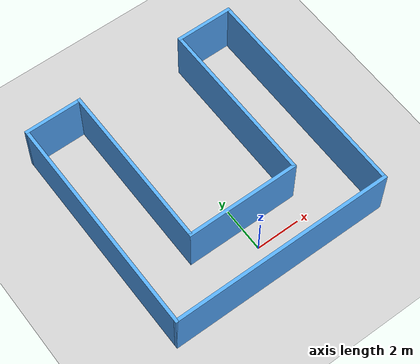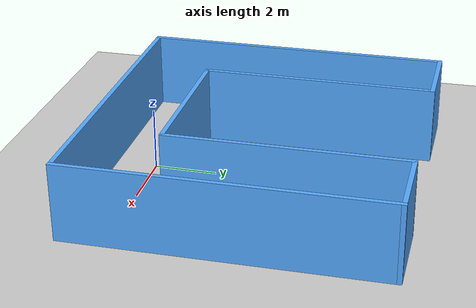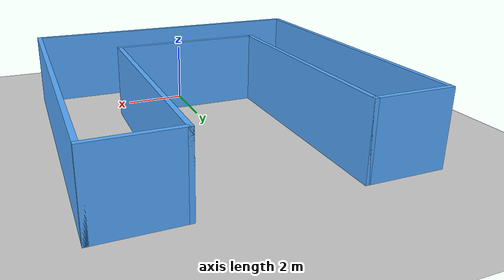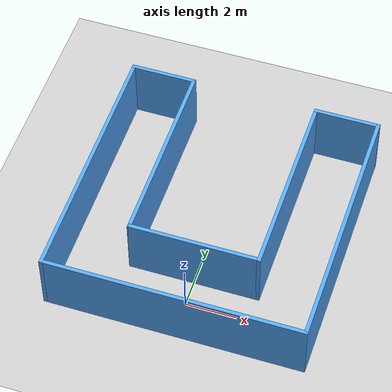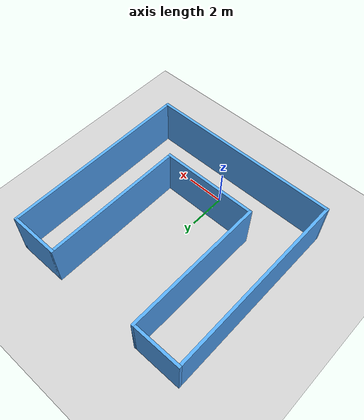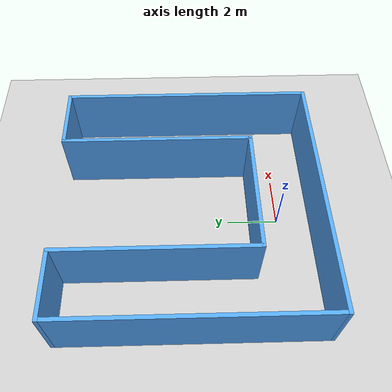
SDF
<sdf version="1.6">
 <world name="default">
  <light name="sun" type="directional">
   <pose>0 0 10 0 -0 0</pose>
   <diffuse>0.8 0.8 0.8 1</diffuse>
   <specular>0.2 0.2 0.2 1</specular>
   <attenuation>
    <range>1000</range>
    <constant>0.9</constant>
    <linear>0.01</linear>
    <quadratic>0.001</quadratic>
   </attenuation>
   <direction>-0.5 0.1 -0.9</direction>
  </light>
  <model name="ground_plane">
   <static>1</static>
   <link name="link">
    <collision name="collision">
     <geometry><plane><normal>0 0 1</normal><size>100 100</size></plane></geometry>
     <surface>
      <contact><collide_bitmask>65535</collide_bitmask></contact>
      <friction><ode><mu>100</mu><mu2>50</mu2></ode></friction>
     </surface>
    </collision>
    <visual name="visual">
     <cast_shadows>0</cast_shadows>
     <geometry><plane><normal>0 0 1</normal><size>100 100</size></plane></geometry>
     <material>
      <script><uri>file://media/materials/scripts/gazebo.material</uri><name>Gazebo/Grey</name></script>
     </material>
    </visual>
   </link>
  </model>
  <physics name="default_physics" default="0" type="ode">
   <max_step_size>0.01</max_step_size>
   <real_time_factor>1</real_time_factor>
   <real_time_update_rate>100</real_time_update_rate>
  </physics>
  <gravity>0 0 -9.8</gravity>
  <magnetic_field>6e-06 2.3e-05 -4.2e-05</magnetic_field>
  <atmosphere type="adiabatic"/>
  <scene><ambient>0.4 0.4 0.4 1</ambient><background>0.7 0.7 0.7 1</background><shadows>1</shadows></scene>
  <spherical_coordinates>
   <surface_model>EARTH_WGS84</surface_model>
   <latitude_deg>0</latitude_deg>
   <longitude_deg>0</longitude_deg>
   <elevation>0</elevation>
   <heading_deg>0</heading_deg>
  </spherical_coordinates>
  <model name="Udacity">
   <pose>-0.004859 3.58455 0 0 -0 0</pose>
   <link name="Wall_0">
    <collision name="Wall_0_Collision">
     <geometry><box><size>10.15 0.15 2.5</size></box></geometry>
     <pose>0 0 1.25 0 -0 0</pose>
    </collision>
    <visual name="Wall_0_Visual">
     <pose>0 0 1.25 0 -0 0</pose>
     <geometry><box><size>10.15 0.15 2.5</size></box></geometry>
     <material>
      <script><uri>file://media/materials/scripts/gazebo.material</uri><name>Gazebo/Grey</name></script>
      <ambient>0.333333 0.666667 1 1</ambient>
     </material>
     <meta><layer>0</layer></meta>
    </visual>
    <pose>0 -5 0 0 -0 0</pose>
   </link>
   <link name="Wall_10">
    <collision name="Wall_10_Collision">
     <geometry><box><size>7.65 0.15 2.5</size></box></geometry>
     <pose>0 0 1.25 0 -0 0</pose>
    </collision>
    <visual name="Wall_10_Visual">
     <pose>0 0 1.25 0 -0 0</pose>
     <geometry><box><size>7.65 0.15 2.5</size></box></geometry>
     <material>
      <script><uri>file://media/materials/scripts/gazebo.material</uri><name>Gazebo/Grey</name></script>
      <ambient>0.333333 0.666667 1 1</ambient>
     </material>
     <meta><layer>0</layer></meta>
    </visual>
    <pose>-2.5 1.25 0 0 0 -1.5708</pose>
   </link>
   <link name="Wall_11">
    <collision name="Wall_11_Collision">
     <geometry><box><size>5.15 0.15 2.5</size></box></geometry>
     <pose>0 0 1.25 0 -0 0</pose>
    </collision>
    <visual name="Wall_11_Visual">
     <pose>0 0 1.25 0 -0 0</pose>
     <geometry><box><size>5.15 0.15 2.5</size></box></geometry>
     <material>
      <script><uri>file://media/materials/scripts/gazebo.material</uri><name>Gazebo/Grey</name></script>
      <ambient>0.333333 0.666667 1 1</ambient>
     </material>
     <meta><layer>0</layer></meta>
    </visual>
    <pose>0 -2.5 0 0 -0 0</pose>
   </link>
   <link name="Wall_12">
    <collision name="Wall_12_Collision">
     <geometry><box><size>7.65 0.15 2.5</size></box></geometry>
     <pose>0 0 1.25 0 -0 0</pose>
    </collision>
    <visual name="Wall_12_Visual">
     <pose>0 0 1.25 0 -0 0</pose>
     <geometry><box><size>7.65 0.15 2.5</size></box></geometry>
     <material>
      <script><uri>file://media/materials/scripts/gazebo.material</uri><name>Gazebo/Grey</name></script>
      <ambient>0.333333 0.666667 1 1</ambient>
     </material>
     <meta><layer>0</layer></meta>
    </visual>
    <pose>2.5 1.25 0 0 -0 1.5708</pose>
   </link>
   <link name="Wall_13">
    <collision name="Wall_13_Collision">
     <geometry><box><size>2.65 0.15 2.5</size></box></geometry>
     <pose>0 0 1.25 0 -0 0</pose>
    </collision>
    <visual name="Wall_13_Visual">
     <pose>0 0 1.25 0 -0 0</pose>
     <geometry><box><size>2.65 0.15 2.5</size></box></geometry>
     <material>
      <script><uri>file://media/materials/scripts/gazebo.material</uri><name>Gazebo/Grey</name></script>
      <ambient>0.333333 0.666667 1 1</ambient>
     </material>
     <meta><layer>0</layer></meta>
    </visual>
    <pose>3.75 5 0 0 -0 0</pose>
   </link>
   <link name="Wall_5">
    <collision name="Wall_5_Collision">
     <geometry><box><size>10 0.15 2.5</size></box></geometry>
     <pose>0 0 1.25 0 -0 0</pose>
    </collision>
    <visual name="Wall_5_Visual">
     <pose>0 0 1.25 0 -0 0</pose>
     <geometry><box><size>10 0.15 2.5</size></box></geometry>
     <material>
      <script><uri>file://media/materials/scripts/gazebo.material</uri><name>Gazebo/Grey</name></script>
      <ambient>0.333333 0.666667 1 1</ambient>
     </material>
     <meta><layer>0</layer></meta>
    </visual>
    <pose>-5 -0.075 0 0 -0 1.5708</pose>
   </link>
   <link name="Wall_7">
    <collision name="Wall_7_Collision">
     <geometry><box><size>10.15 0.15 2.5</size></box></geometry>
     <pose>0 0 1.25 0 -0 0</pose>
    </collision>
    <visual name="Wall_7_Visual">
     <pose>0 0 1.25 0 -0 0</pose>
     <geometry><box><size>10.15 0.15 2.5</size></box></geometry>
     <material>
      <script><uri>file://media/materials/scripts/gazebo.material</uri><name>Gazebo/Grey</name></script>
      <ambient>0.333333 0.666667 1 1</ambient>
     </material>
     <meta><layer>0</layer></meta>
    </visual>
    <pose>5 0 0 0 -0 1.5708</pose>
   </link>
   <link name="Wall_9">
    <collision name="Wall_9_Collision">
     <geometry><box><size>2.65 0.15 2.5</size></box></geometry>
     <pose>0 0 1.25 0 -0 0</pose>
    </collision>
    <visual name="Wall_9_Visual">
     <pose>0 0 1.25 0 -0 0</pose>
     <geometry><box><size>2.65 0.15 2.5</size></box></geometry>
     <material>
      <script><uri>file://media/materials/scripts/gazebo.material</uri><name>Gazebo/Grey</name></script>
      <ambient>0.333333 0.666667 1 1</ambient>
     </material>
     <meta><layer>0</layer></meta>
    </visual>
    <pose>-3.75 5 0 0 -0 0</pose>
   </link>
   <static>1</static>
  </model>
 </world>
</sdf>
